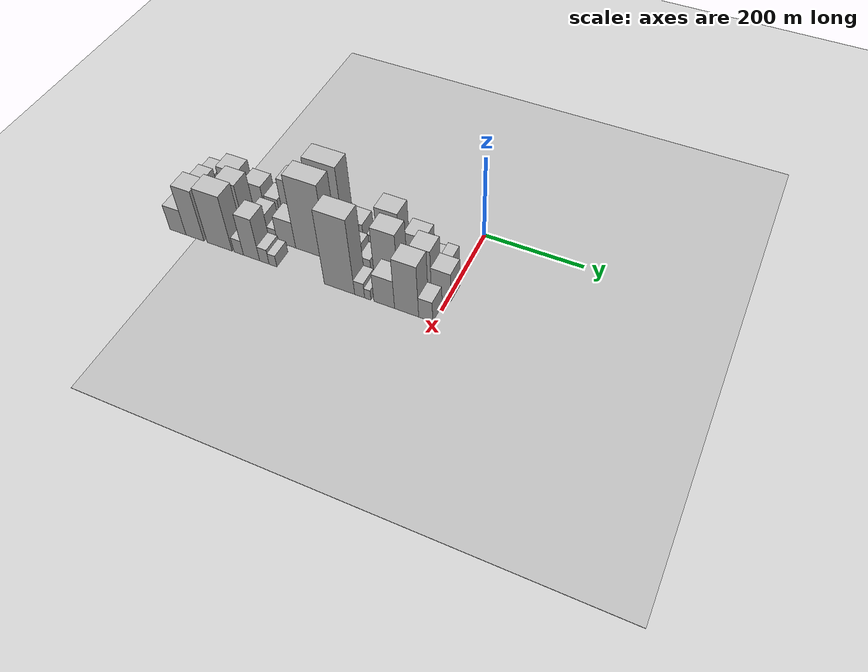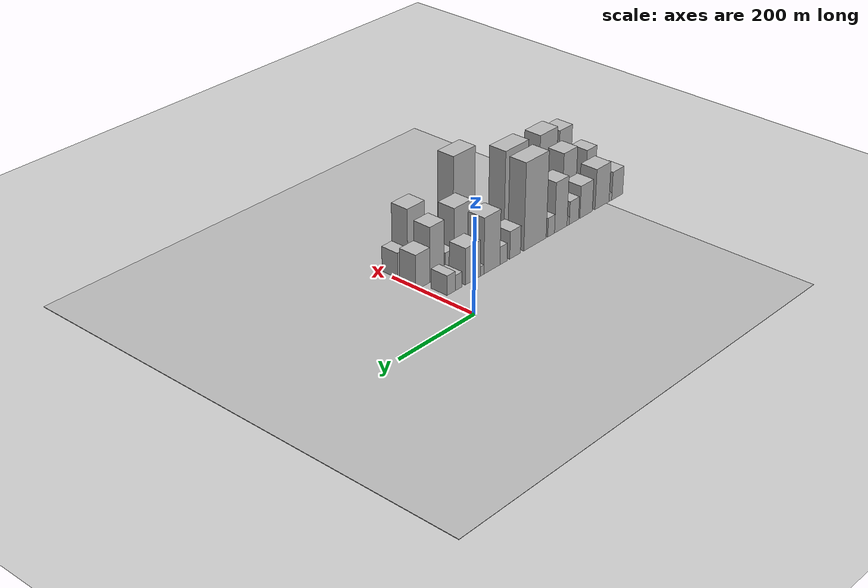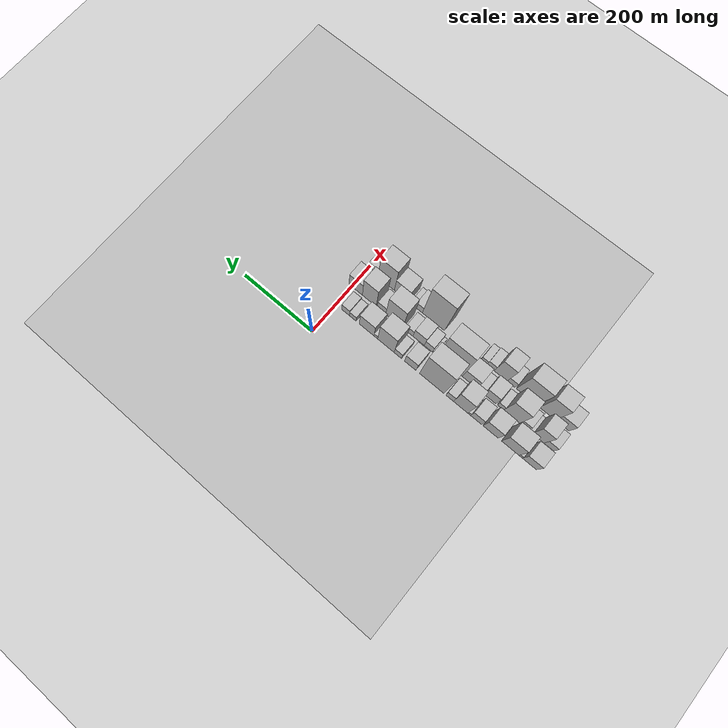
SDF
<sdf version="1.6">
 <world name="default">
  <include><name>ground_plane_1</name><uri>model://HANNAS_ground_plane</uri></include>
  <include>
   <name>ground_plane_2</name>
   <uri>model://HANNAS_ground_plane</uri>
   <pose>100 0 0  0 0 0</pose>
  </include>
  <model name="building_1">
   <static>1</static>
   <pose>100.0000 -536.4978 0 0.000000 0.000000 0.000000</pose>
   <link name="link">
    <pose>0 0 31.50 0 0 0</pose>
    <collision name="collision"><geometry><box><size>40.0000 37.0043 63.0000</size></box></geometry></collision>
    <visual name="visual">
     <cast_shadows>0</cast_shadows>
     <geometry><box><size>40.0000 37.0043 63.0000</size></box></geometry>
     <material>
      <script>
       <uri>model://HANNAS_wall/materials/scripts</uri>
       <uri>model://HANNAS_wall/materials/textures</uri>
       <name>vrc/HANNAS_wall</name>
      </script>
     </material>
    </visual>
   </link>
  </model>
  <model name="building_2">
   <static>1</static>
   <pose>100.0000 -513.5235 0 0.000000 0.000000 0.000000</pose>
   <link name="link">
    <pose>0 0 9.00 0 0 0</pose>
    <collision name="collision"><geometry><box><size>40.0000 8.9444 18.0000</size></box></geometry></collision>
    <visual name="visual">
     <cast_shadows>0</cast_shadows>
     <geometry><box><size>40.0000 8.9444 18.0000</size></box></geometry>
     <material>
      <script>
       <uri>model://HANNAS_wall/materials/scripts</uri>
       <uri>model://HANNAS_wall/materials/textures</uri>
       <name>vrc/HANNAS_wall</name>
      </script>
     </material>
    </visual>
   </link>
  </model>
  <model name="building_3">
   <static>1</static>
   <pose>100.0000 -485.9807 0 0.000000 0.000000 0.000000</pose>
   <link name="link">
    <pose>0 0 45.00 0 0 0</pose>
    <collision name="collision"><geometry><box><size>40.0000 46.1410 90.0000</size></box></geometry></collision>
    <visual name="visual">
     <cast_shadows>0</cast_shadows>
     <geometry><box><size>40.0000 46.1410 90.0000</size></box></geometry>
     <material>
      <script>
       <uri>model://HANNAS_wall/materials/scripts</uri>
       <uri>model://HANNAS_wall/materials/textures</uri>
       <name>vrc/HANNAS_wall</name>
      </script>
     </material>
    </visual>
   </link>
  </model>
  <model name="building_4">
   <static>1</static>
   <pose>100.0000 -433.6852 0 0.000000 0.000000 0.000000</pose>
   <link name="link">
    <pose>0 0 36.00 0 0 0</pose>
    <collision name="collision"><geometry><box><size>40.0000 40.4501 72.0000</size></box></geometry></collision>
    <visual name="visual">
     <cast_shadows>0</cast_shadows>
     <geometry><box><size>40.0000 40.4501 72.0000</size></box></geometry>
     <material>
      <script>
       <uri>model://HANNAS_wall/materials/scripts</uri>
       <uri>model://HANNAS_wall/materials/textures</uri>
       <name>vrc/HANNAS_wall</name>
      </script>
     </material>
    </visual>
   </link>
  </model>
  <model name="building_5">
   <static>1</static>
   <pose>100.0000 -394.5780 0 0.000000 0.000000 0.000000</pose>
   <link name="link">
    <pose>0 0 25.50 0 0 0</pose>
    <collision name="collision"><geometry><box><size>40.0000 29.7641 51.0000</size></box></geometry></collision>
    <visual name="visual">
     <cast_shadows>0</cast_shadows>
     <geometry><box><size>40.0000 29.7641 51.0000</size></box></geometry>
     <material>
      <script>
       <uri>model://HANNAS_wall/materials/scripts</uri>
       <uri>model://HANNAS_wall/materials/textures</uri>
       <name>vrc/HANNAS_wall</name>
      </script>
     </material>
    </visual>
   </link>
  </model>
  <model name="building_6">
   <static>1</static>
   <pose>100.0000 -375.9999 0 0.000000 0.000000 0.000000</pose>
   <link name="link">
    <pose>0 0 9.00 0 0 0</pose>
    <collision name="collision"><geometry><box><size>40.0000 7.3922 18.0000</size></box></geometry></collision>
    <visual name="visual">
     <cast_shadows>0</cast_shadows>
     <geometry><box><size>40.0000 7.3922 18.0000</size></box></geometry>
     <material>
      <script>
       <uri>model://HANNAS_wall/materials/scripts</uri>
       <uri>model://HANNAS_wall/materials/textures</uri>
       <name>vrc/HANNAS_wall</name>
      </script>
     </material>
    </visual>
   </link>
  </model>
  <model name="building_7">
   <static>1</static>
   <pose>100.0000 -352.7572 0 0.000000 0.000000 0.000000</pose>
   <link name="link">
    <pose>0 0 55.50 0 0 0</pose>
    <collision name="collision"><geometry><box><size>40.0000 39.0932 111.0000</size></box></geometry></collision>
    <visual name="visual">
     <cast_shadows>0</cast_shadows>
     <geometry><box><size>40.0000 39.0932 111.0000</size></box></geometry>
     <material>
      <script>
       <uri>model://HANNAS_wall/materials/scripts</uri>
       <uri>model://HANNAS_wall/materials/textures</uri>
       <name>vrc/HANNAS_wall</name>
      </script>
     </material>
    </visual>
   </link>
  </model>
  <model name="building_8">
   <static>1</static>
   <pose>100.0000 -322.6855 0 0.000000 0.000000 0.000000</pose>
   <link name="link">
    <pose>0 0 21.00 0 0 0</pose>
    <collision name="collision"><geometry><box><size>40.0000 21.0502 42.0000</size></box></geometry></collision>
    <visual name="visual">
     <cast_shadows>0</cast_shadows>
     <geometry><box><size>40.0000 21.0502 42.0000</size></box></geometry>
     <material>
      <script>
       <uri>model://HANNAS_wall/materials/scripts</uri>
       <uri>model://HANNAS_wall/materials/textures</uri>
       <name>vrc/HANNAS_wall</name>
      </script>
     </material>
    </visual>
   </link>
  </model>
  <model name="building_9">
   <static>1</static>
   <pose>100.0000 -273.0492 0 0.000000 0.000000 0.000000</pose>
   <link name="link">
    <pose>0 0 94.50 0 0 0</pose>
    <collision name="collision"><geometry><box><size>40.0000 68.2222 189.0000</size></box></geometry></collision>
    <visual name="visual">
     <cast_shadows>0</cast_shadows>
     <geometry><box><size>40.0000 68.2222 189.0000</size></box></geometry>
     <material>
      <script>
       <uri>model://HANNAS_wall/materials/scripts</uri>
       <uri>model://HANNAS_wall/materials/textures</uri>
       <name>vrc/HANNAS_wall</name>
      </script>
     </material>
    </visual>
   </link>
  </model>
  <model name="building_10">
   <static>1</static>
   <pose>100.0000 -212.8219 0 0.000000 0.000000 0.000000</pose>
   <link name="link">
    <pose>0 0 30.00 0 0 0</pose>
    <collision name="collision"><geometry><box><size>40.0000 32.2324 60.0000</size></box></geometry></collision>
    <visual name="visual">
     <cast_shadows>0</cast_shadows>
     <geometry><box><size>40.0000 32.2324 60.0000</size></box></geometry>
     <material>
      <script>
       <uri>model://HANNAS_wall/materials/scripts</uri>
       <uri>model://HANNAS_wall/materials/textures</uri>
       <name>vrc/HANNAS_wall</name>
      </script>
     </material>
    </visual>
   </link>
  </model>
  <model name="building_11">
   <static>1</static>
   <pose>100.0000 -178.1105 0 0.000000 0.000000 0.000000</pose>
   <link name="link">
    <pose>0 0 19.50 0 0 0</pose>
    <collision name="collision"><geometry><box><size>40.0000 21.1903 39.0000</size></box></geometry></collision>
    <visual name="visual">
     <cast_shadows>0</cast_shadows>
     <geometry><box><size>40.0000 21.1903 39.0000</size></box></geometry>
     <material>
      <script>
       <uri>model://HANNAS_wall/materials/scripts</uri>
       <uri>model://HANNAS_wall/materials/textures</uri>
       <name>vrc/HANNAS_wall</name>
      </script>
     </material>
    </visual>
   </link>
  </model>
  <model name="building_12">
   <static>1</static>
   <pose>100.0000 -144.1233 0 0.000000 0.000000 0.000000</pose>
   <link name="link">
    <pose>0 0 60.00 0 0 0</pose>
    <collision name="collision"><geometry><box><size>40.0000 46.7842 120.0000</size></box></geometry></collision>
    <visual name="visual">
     <cast_shadows>0</cast_shadows>
     <geometry><box><size>40.0000 46.7842 120.0000</size></box></geometry>
     <material>
      <script>
       <uri>model://HANNAS_wall/materials/scripts</uri>
       <uri>model://HANNAS_wall/materials/textures</uri>
       <name>vrc/HANNAS_wall</name>
      </script>
     </material>
    </visual>
   </link>
  </model>
  <model name="building_13">
   <static>1</static>
   <pose>100.0000 -115.5351 0 0.000000 0.000000 0.000000</pose>
   <link name="link">
    <pose>0 0 10.50 0 0 0</pose>
    <collision name="collision"><geometry><box><size>40.0000 10.3920 21.0000</size></box></geometry></collision>
    <visual name="visual">
     <cast_shadows>0</cast_shadows>
     <geometry><box><size>40.0000 10.3920 21.0000</size></box></geometry>
     <material>
      <script>
       <uri>model://HANNAS_wall/materials/scripts</uri>
       <uri>model://HANNAS_wall/materials/textures</uri>
       <name>vrc/HANNAS_wall</name>
      </script>
     </material>
    </visual>
   </link>
  </model>
  <model name="building_14">
   <static>1</static>
   <pose>100.0000 -89.1203 0 0.000000 0.000000 0.000000</pose>
   <link name="link">
    <pose>0 0 39.00 0 0 0</pose>
    <collision name="collision"><geometry><box><size>40.0000 42.4377 78.0000</size></box></geometry></collision>
    <visual name="visual">
     <cast_shadows>0</cast_shadows>
     <geometry><box><size>40.0000 42.4377 78.0000</size></box></geometry>
     <material>
      <script>
       <uri>model://HANNAS_wall/materials/scripts</uri>
       <uri>model://HANNAS_wall/materials/textures</uri>
       <name>vrc/HANNAS_wall</name>
      </script>
     </material>
    </visual>
   </link>
  </model>
  <model name="building_15">
   <static>1</static>
   <pose>100.0000 -49.3917 0 0.000000 0.000000 0.000000</pose>
   <link name="link">
    <pose>0 0 16.50 0 0 0</pose>
    <collision name="collision"><geometry><box><size>40.0000 19.0196 33.0000</size></box></geometry></collision>
    <visual name="visual">
     <cast_shadows>0</cast_shadows>
     <geometry><box><size>40.0000 19.0196 33.0000</size></box></geometry>
     <material>
      <script>
       <uri>model://HANNAS_wall/materials/scripts</uri>
       <uri>model://HANNAS_wall/materials/textures</uri>
       <name>vrc/HANNAS_wall</name>
      </script>
     </material>
    </visual>
   </link>
  </model>
  <model name="building_16">
   <static>1</static>
   <pose>100.0000 -28.5650 0 0.000000 0.000000 0.000000</pose>
   <link name="link">
    <pose>0 0 21.00 0 0 0</pose>
    <collision name="collision"><geometry><box><size>40.0000 22.6339 42.0000</size></box></geometry></collision>
    <visual name="visual">
     <cast_shadows>0</cast_shadows>
     <geometry><box><size>40.0000 22.6339 42.0000</size></box></geometry>
     <material>
      <script>
       <uri>model://HANNAS_wall/materials/scripts</uri>
       <uri>model://HANNAS_wall/materials/textures</uri>
       <name>vrc/HANNAS_wall</name>
      </script>
     </material>
    </visual>
   </link>
  </model>
  <model name="building_31">
   <static>1</static>
   <pose>155.0000 -547.2666 0 0.000000 0.000000 0.000000</pose>
   <link name="link">
    <pose>0 0 22.50 0 0 0</pose>
    <collision name="collision"><geometry><box><size>40.0000 25.4667 45.0000</size></box></geometry></collision>
    <visual name="visual">
     <cast_shadows>0</cast_shadows>
     <geometry><box><size>40.0000 25.4667 45.0000</size></box></geometry>
     <material>
      <script>
       <uri>model://HANNAS_wall/materials/scripts</uri>
       <uri>model://HANNAS_wall/materials/textures</uri>
       <name>vrc/HANNAS_wall</name>
      </script>
     </material>
    </visual>
   </link>
  </model>
  <model name="building_32">
   <static>1</static>
   <pose>155.0000 -518.5581 0 0.000000 0.000000 0.000000</pose>
   <link name="link">
    <pose>0 0 49.50 0 0 0</pose>
    <collision name="collision"><geometry><box><size>40.0000 31.9503 99.0000</size></box></geometry></collision>
    <visual name="visual">
     <cast_shadows>0</cast_shadows>
     <geometry><box><size>40.0000 31.9503 99.0000</size></box></geometry>
     <material>
      <script>
       <uri>model://HANNAS_wall/materials/scripts</uri>
       <uri>model://HANNAS_wall/materials/textures</uri>
       <name>vrc/HANNAS_wall</name>
      </script>
     </material>
    </visual>
   </link>
  </model>
  <model name="building_33">
   <static>1</static>
   <pose>155.0000 -497.5634 0 0.000000 0.000000 0.000000</pose>
   <link name="link">
    <pose>0 0 12.00 0 0 0</pose>
    <collision name="collision"><geometry><box><size>40.0000 10.0391 24.0000</size></box></geometry></collision>
    <visual name="visual">
     <cast_shadows>0</cast_shadows>
     <geometry><box><size>40.0000 10.0391 24.0000</size></box></geometry>
     <material>
      <script>
       <uri>model://HANNAS_wall/materials/scripts</uri>
       <uri>model://HANNAS_wall/materials/textures</uri>
       <name>vrc/HANNAS_wall</name>
      </script>
     </material>
    </visual>
   </link>
  </model>
  <model name="building_34">
   <static>1</static>
   <pose>155.0000 -481.2529 0 0.000000 0.000000 0.000000</pose>
   <link name="link">
    <pose>0 0 21.00 0 0 0</pose>
    <collision name="collision"><geometry><box><size>40.0000 22.5821 42.0000</size></box></geometry></collision>
    <visual name="visual">
     <cast_shadows>0</cast_shadows>
     <geometry><box><size>40.0000 22.5821 42.0000</size></box></geometry>
     <material>
      <script>
       <uri>model://HANNAS_wall/materials/scripts</uri>
       <uri>model://HANNAS_wall/materials/textures</uri>
       <name>vrc/HANNAS_wall</name>
      </script>
     </material>
    </visual>
   </link>
  </model>
  <model name="building_35">
   <static>1</static>
   <pose>155.0000 -448.2591 0 0.000000 0.000000 0.000000</pose>
   <link name="link">
    <pose>0 0 60.00 0 0 0</pose>
    <collision name="collision"><geometry><box><size>40.0000 43.4055 120.0000</size></box></geometry></collision>
    <visual name="visual">
     <cast_shadows>0</cast_shadows>
     <geometry><box><size>40.0000 43.4055 120.0000</size></box></geometry>
     <material>
      <script>
       <uri>model://HANNAS_wall/materials/scripts</uri>
       <uri>model://HANNAS_wall/materials/textures</uri>
       <name>vrc/HANNAS_wall</name>
      </script>
     </material>
    </visual>
   </link>
  </model>
  <model name="building_36">
   <static>1</static>
   <pose>155.0000 -418.0772 0 0.000000 0.000000 0.000000</pose>
   <link name="link">
    <pose>0 0 16.50 0 0 0</pose>
    <collision name="collision"><geometry><box><size>40.0000 16.9582 33.0000</size></box></geometry></collision>
    <visual name="visual">
     <cast_shadows>0</cast_shadows>
     <geometry><box><size>40.0000 16.9582 33.0000</size></box></geometry>
     <material>
      <script>
       <uri>model://HANNAS_wall/materials/scripts</uri>
       <uri>model://HANNAS_wall/materials/textures</uri>
       <name>vrc/HANNAS_wall</name>
      </script>
     </material>
    </visual>
   </link>
  </model>
  <model name="building_37">
   <static>1</static>
   <pose>155.0000 -389.3531 0 0.000000 0.000000 0.000000</pose>
   <link name="link">
    <pose>0 0 31.50 0 0 0</pose>
    <collision name="collision"><geometry><box><size>40.0000 32.4898 63.0000</size></box></geometry></collision>
    <visual name="visual">
     <cast_shadows>0</cast_shadows>
     <geometry><box><size>40.0000 32.4898 63.0000</size></box></geometry>
     <material>
      <script>
       <uri>model://HANNAS_wall/materials/scripts</uri>
       <uri>model://HANNAS_wall/materials/textures</uri>
       <name>vrc/HANNAS_wall</name>
      </script>
     </material>
    </visual>
   </link>
  </model>
  <model name="building_38">
   <static>1</static>
   <pose>155.0000 -363.6182 0 0.000000 0.000000 0.000000</pose>
   <link name="link">
    <pose>0 0 16.50 0 0 0</pose>
    <collision name="collision"><geometry><box><size>40.0000 18.9801 33.0000</size></box></geometry></collision>
    <visual name="visual">
     <cast_shadows>0</cast_shadows>
     <geometry><box><size>40.0000 18.9801 33.0000</size></box></geometry>
     <material>
      <script>
       <uri>model://HANNAS_wall/materials/scripts</uri>
       <uri>model://HANNAS_wall/materials/textures</uri>
       <name>vrc/HANNAS_wall</name>
      </script>
     </material>
    </visual>
   </link>
  </model>
  <model name="building_39">
   <static>1</static>
   <pose>155.0000 -333.9596 0 0.000000 0.000000 0.000000</pose>
   <link name="link">
    <pose>0 0 34.50 0 0 0</pose>
    <collision name="collision"><geometry><box><size>40.0000 40.3371 69.0000</size></box></geometry></collision>
    <visual name="visual">
     <cast_shadows>0</cast_shadows>
     <geometry><box><size>40.0000 40.3371 69.0000</size></box></geometry>
     <material>
      <script>
       <uri>model://HANNAS_wall/materials/scripts</uri>
       <uri>model://HANNAS_wall/materials/textures</uri>
       <name>vrc/HANNAS_wall</name>
      </script>
     </material>
    </visual>
   </link>
  </model>
  <model name="building_40">
   <static>1</static>
   <pose>155.0000 -279.4858 0 0.000000 0.000000 0.000000</pose>
   <link name="link">
    <pose>0 0 96.00 0 0 0</pose>
    <collision name="collision"><geometry><box><size>40.0000 68.6106 192.0000</size></box></geometry></collision>
    <visual name="visual">
     <cast_shadows>0</cast_shadows>
     <geometry><box><size>40.0000 68.6106 192.0000</size></box></geometry>
     <material>
      <script>
       <uri>model://HANNAS_wall/materials/scripts</uri>
       <uri>model://HANNAS_wall/materials/textures</uri>
       <name>vrc/HANNAS_wall</name>
      </script>
     </material>
    </visual>
   </link>
  </model>
  <model name="building_41">
   <static>1</static>
   <pose>155.0000 -235.2653 0 0.000000 0.000000 0.000000</pose>
   <link name="link">
    <pose>0 0 9.00 0 0 0</pose>
    <collision name="collision"><geometry><box><size>40.0000 7.8304 18.0000</size></box></geometry></collision>
    <visual name="visual">
     <cast_shadows>0</cast_shadows>
     <geometry><box><size>40.0000 7.8304 18.0000</size></box></geometry>
     <material>
      <script>
       <uri>model://HANNAS_wall/materials/scripts</uri>
       <uri>model://HANNAS_wall/materials/textures</uri>
       <name>vrc/HANNAS_wall</name>
      </script>
     </material>
    </visual>
   </link>
  </model>
  <model name="building_42">
   <static>1</static>
   <pose>155.0000 -219.8077 0 0.000000 0.000000 0.000000</pose>
   <link name="link">
    <pose>0 0 21.00 0 0 0</pose>
    <collision name="collision"><geometry><box><size>40.0000 23.0848 42.0000</size></box></geometry></collision>
    <visual name="visual">
     <cast_shadows>0</cast_shadows>
     <geometry><box><size>40.0000 23.0848 42.0000</size></box></geometry>
     <material>
      <script>
       <uri>model://HANNAS_wall/materials/scripts</uri>
       <uri>model://HANNAS_wall/materials/textures</uri>
       <name>vrc/HANNAS_wall</name>
      </script>
     </material>
    </visual>
   </link>
  </model>
  <model name="building_43">
   <static>1</static>
   <pose>155.0000 -192.2204 0 0.000000 0.000000 0.000000</pose>
   <link name="link">
    <pose>0 0 30.00 0 0 0</pose>
    <collision name="collision"><geometry><box><size>40.0000 32.0897 60.0000</size></box></geometry></collision>
    <visual name="visual">
     <cast_shadows>0</cast_shadows>
     <geometry><box><size>40.0000 32.0897 60.0000</size></box></geometry>
     <material>
      <script>
       <uri>model://HANNAS_wall/materials/scripts</uri>
       <uri>model://HANNAS_wall/materials/textures</uri>
       <name>vrc/HANNAS_wall</name>
      </script>
     </material>
    </visual>
   </link>
  </model>
  <model name="building_44">
   <static>1</static>
   <pose>155.0000 -164.7455 0 0.000000 0.000000 0.000000</pose>
   <link name="link">
    <pose>0 0 19.50 0 0 0</pose>
    <collision name="collision"><geometry><box><size>40.0000 22.8601 39.0000</size></box></geometry></collision>
    <visual name="visual">
     <cast_shadows>0</cast_shadows>
     <geometry><box><size>40.0000 22.8601 39.0000</size></box></geometry>
     <material>
      <script>
       <uri>model://HANNAS_wall/materials/scripts</uri>
       <uri>model://HANNAS_wall/materials/textures</uri>
       <name>vrc/HANNAS_wall</name>
      </script>
     </material>
    </visual>
   </link>
  </model>
  <model name="building_45">
   <static>1</static>
   <pose>155.0000 -122.9405 0 0.000000 0.000000 0.000000</pose>
   <link name="link">
    <pose>0 0 64.50 0 0 0</pose>
    <collision name="collision"><geometry><box><size>40.0000 48.7498 129.0000</size></box></geometry></collision>
    <visual name="visual">
     <cast_shadows>0</cast_shadows>
     <geometry><box><size>40.0000 48.7498 129.0000</size></box></geometry>
     <material>
      <script>
       <uri>model://HANNAS_wall/materials/scripts</uri>
       <uri>model://HANNAS_wall/materials/textures</uri>
       <name>vrc/HANNAS_wall</name>
      </script>
     </material>
    </visual>
   </link>
  </model>
  <model name="building_46">
   <static>1</static>
   <pose>155.0000 -86.2592 0 0.000000 0.000000 0.000000</pose>
   <link name="link">
    <pose>0 0 22.50 0 0 0</pose>
    <collision name="collision"><geometry><box><size>40.0000 24.6128 45.0000</size></box></geometry></collision>
    <visual name="visual">
     <cast_shadows>0</cast_shadows>
     <geometry><box><size>40.0000 24.6128 45.0000</size></box></geometry>
     <material>
      <script>
       <uri>model://HANNAS_wall/materials/scripts</uri>
       <uri>model://HANNAS_wall/materials/textures</uri>
       <name>vrc/HANNAS_wall</name>
      </script>
     </material>
    </visual>
   </link>
  </model>
  <model name="building_47">
   <static>1</static>
   <pose>155.0000 -50.9392 0 0.000000 0.000000 0.000000</pose>
   <link name="link">
    <pose>0 0 58.50 0 0 0</pose>
    <collision name="collision"><geometry><box><size>40.0000 40.0271 117.0000</size></box></geometry></collision>
    <visual name="visual">
     <cast_shadows>0</cast_shadows>
     <geometry><box><size>40.0000 40.0271 117.0000</size></box></geometry>
     <material>
      <script>
       <uri>model://HANNAS_wall/materials/scripts</uri>
       <uri>model://HANNAS_wall/materials/textures</uri>
       <name>vrc/HANNAS_wall</name>
      </script>
     </material>
    </visual>
   </link>
  </model>
  <model name="building_48">
   <static>1</static>
   <pose>155.0000 -11.4547 0 0.000000 0.000000 0.000000</pose>
   <link name="link">
    <pose>0 0 37.50 0 0 0</pose>
    <collision name="collision"><geometry><box><size>40.0000 38.9421 75.0000</size></box></geometry></collision>
    <visual name="visual">
     <cast_shadows>0</cast_shadows>
     <geometry><box><size>40.0000 38.9421 75.0000</size></box></geometry>
     <material>
      <script>
       <uri>model://HANNAS_wall/materials/scripts</uri>
       <uri>model://HANNAS_wall/materials/textures</uri>
       <name>vrc/HANNAS_wall</name>
      </script>
     </material>
    </visual>
   </link>
  </model>
  <model name="building_66">
   <static>1</static>
   <pose>210.0000 -541.5973 0 0.000000 0.000000 0.000000</pose>
   <link name="link">
    <pose>0 0 33.00 0 0 0</pose>
    <collision name="collision"><geometry><box><size>40.0000 36.8053 66.0000</size></box></geometry></collision>
    <visual name="visual">
     <cast_shadows>0</cast_shadows>
     <geometry><box><size>40.0000 36.8053 66.0000</size></box></geometry>
     <material>
      <script>
       <uri>model://HANNAS_wall/materials/scripts</uri>
       <uri>model://HANNAS_wall/materials/textures</uri>
       <name>vrc/HANNAS_wall</name>
      </script>
     </material>
    </visual>
   </link>
  </model>
  <model name="building_67">
   <static>1</static>
   <pose>210.0000 -502.7624 0 0.000000 0.000000 0.000000</pose>
   <link name="link">
    <pose>0 0 66.00 0 0 0</pose>
    <collision name="collision"><geometry><box><size>40.0000 40.8647 132.0000</size></box></geometry></collision>
    <visual name="visual">
     <cast_shadows>0</cast_shadows>
     <geometry><box><size>40.0000 40.8647 132.0000</size></box></geometry>
     <material>
      <script>
       <uri>model://HANNAS_wall/materials/scripts</uri>
       <uri>model://HANNAS_wall/materials/textures</uri>
       <name>vrc/HANNAS_wall</name>
      </script>
     </material>
    </visual>
   </link>
  </model>
  <model name="building_68">
   <static>1</static>
   <pose>210.0000 -447.4744 0 0.000000 0.000000 0.000000</pose>
   <link name="link">
    <pose>0 0 72.00 0 0 0</pose>
    <collision name="collision"><geometry><box><size>40.0000 55.7113 144.0000</size></box></geometry></collision>
    <visual name="visual">
     <cast_shadows>0</cast_shadows>
     <geometry><box><size>40.0000 55.7113 144.0000</size></box></geometry>
     <material>
      <script>
       <uri>model://HANNAS_wall/materials/scripts</uri>
       <uri>model://HANNAS_wall/materials/textures</uri>
       <name>vrc/HANNAS_wall</name>
      </script>
     </material>
    </visual>
   </link>
  </model>
  <model name="building_69">
   <static>1</static>
   <pose>210.0000 -405.1567 0 0.000000 0.000000 0.000000</pose>
   <link name="link">
    <pose>0 0 19.50 0 0 0</pose>
    <collision name="collision"><geometry><box><size>40.0000 20.9241 39.0000</size></box></geometry></collision>
    <visual name="visual">
     <cast_shadows>0</cast_shadows>
     <geometry><box><size>40.0000 20.9241 39.0000</size></box></geometry>
     <material>
      <script>
       <uri>model://HANNAS_wall/materials/scripts</uri>
       <uri>model://HANNAS_wall/materials/textures</uri>
       <name>vrc/HANNAS_wall</name>
      </script>
     </material>
    </visual>
   </link>
  </model>
  <model name="building_70">
   <static>1</static>
   <pose>210.0000 -377.0378 0 0.000000 0.000000 0.000000</pose>
   <link name="link">
    <pose>0 0 55.50 0 0 0</pose>
    <collision name="collision"><geometry><box><size>40.0000 35.3137 111.0000</size></box></geometry></collision>
    <visual name="visual">
     <cast_shadows>0</cast_shadows>
     <geometry><box><size>40.0000 35.3137 111.0000</size></box></geometry>
     <material>
      <script>
       <uri>model://HANNAS_wall/materials/scripts</uri>
       <uri>model://HANNAS_wall/materials/textures</uri>
       <name>vrc/HANNAS_wall</name>
      </script>
     </material>
    </visual>
   </link>
  </model>
  <model name="building_71">
   <static>1</static>
   <pose>210.0000 -349.1001 0 0.000000 0.000000 0.000000</pose>
   <link name="link">
    <pose>0 0 19.50 0 0 0</pose>
    <collision name="collision"><geometry><box><size>40.0000 20.5616 39.0000</size></box></geometry></collision>
    <visual name="visual">
     <cast_shadows>0</cast_shadows>
     <geometry><box><size>40.0000 20.5616 39.0000</size></box></geometry>
     <material>
      <script>
       <uri>model://HANNAS_wall/materials/scripts</uri>
       <uri>model://HANNAS_wall/materials/textures</uri>
       <name>vrc/HANNAS_wall</name>
      </script>
     </material>
    </visual>
   </link>
  </model>
  <model name="building_72">
   <static>1</static>
   <pose>210.0000 -330.4810 0 0.000000 0.000000 0.000000</pose>
   <link name="link">
    <pose>0 0 15.00 0 0 0</pose>
    <collision name="collision"><geometry><box><size>40.0000 16.6767 30.0000</size></box></geometry></collision>
    <visual name="visual">
     <cast_shadows>0</cast_shadows>
     <geometry><box><size>40.0000 16.6767 30.0000</size></box></geometry>
     <material>
      <script>
       <uri>model://HANNAS_wall/materials/scripts</uri>
       <uri>model://HANNAS_wall/materials/textures</uri>
       <name>vrc/HANNAS_wall</name>
      </script>
     </material>
    </visual>
   </link>
  </model>
  <model name="building_73">
   <static>1</static>
   <pose>210.0000 -190.0731 0 0.000000 0.000000 0.000000</pose>
   <link name="link">
    <pose>0 0 97.50 0 0 0</pose>
    <collision name="collision"><geometry><box><size>40.0000 62.7130 195.0000</size></box></geometry></collision>
    <visual name="visual">
     <cast_shadows>0</cast_shadows>
     <geometry><box><size>40.0000 62.7130 195.0000</size></box></geometry>
     <material>
      <script>
       <uri>model://HANNAS_wall/materials/scripts</uri>
       <uri>model://HANNAS_wall/materials/textures</uri>
       <name>vrc/HANNAS_wall</name>
      </script>
     </material>
    </visual>
   </link>
  </model>
  <model name="building_74">
   <static>1</static>
   <pose>210.0000 -148.5281 0 0.000000 0.000000 0.000000</pose>
   <link name="link">
    <pose>0 0 19.50 0 0 0</pose>
    <collision name="collision"><geometry><box><size>40.0000 20.3769 39.0000</size></box></geometry></collision>
    <visual name="visual">
     <cast_shadows>0</cast_shadows>
     <geometry><box><size>40.0000 20.3769 39.0000</size></box></geometry>
     <material>
      <script>
       <uri>model://HANNAS_wall/materials/scripts</uri>
       <uri>model://HANNAS_wall/materials/textures</uri>
       <name>vrc/HANNAS_wall</name>
      </script>
     </material>
    </visual>
   </link>
  </model>
  <model name="building_75">
   <static>1</static>
   <pose>210.0000 -131.9773 0 0.000000 0.000000 0.000000</pose>
   <link name="link">
    <pose>0 0 13.50 0 0 0</pose>
    <collision name="collision"><geometry><box><size>40.0000 12.7246 27.0000</size></box></geometry></collision>
    <visual name="visual">
     <cast_shadows>0</cast_shadows>
     <geometry><box><size>40.0000 12.7246 27.0000</size></box></geometry>
     <material>
      <script>
       <uri>model://HANNAS_wall/materials/scripts</uri>
       <uri>model://HANNAS_wall/materials/textures</uri>
       <name>vrc/HANNAS_wall</name>
      </script>
     </material>
    </visual>
   </link>
  </model>
  <model name="building_76">
   <static>1</static>
   <pose>210.0000 -98.7739 0 0.000000 0.000000 0.000000</pose>
   <link name="link">
    <pose>0 0 37.50 0 0 0</pose>
    <collision name="collision"><geometry><box><size>40.0000 41.6821 75.0000</size></box></geometry></collision>
    <visual name="visual">
     <cast_shadows>0</cast_shadows>
     <geometry><box><size>40.0000 41.6821 75.0000</size></box></geometry>
     <material>
      <script>
       <uri>model://HANNAS_wall/materials/scripts</uri>
       <uri>model://HANNAS_wall/materials/textures</uri>
       <name>vrc/HANNAS_wall</name>
      </script>
     </material>
    </visual>
   </link>
  </model>
  <model name="building_77">
   <static>1</static>
   <pose>210.0000 -54.0865 0 0.000000 0.000000 0.000000</pose>
   <link name="link">
    <pose>0 0 67.50 0 0 0</pose>
    <collision name="collision"><geometry><box><size>40.0000 47.6928 135.0000</size></box></geometry></collision>
    <visual name="visual">
     <cast_shadows>0</cast_shadows>
     <geometry><box><size>40.0000 47.6928 135.0000</size></box></geometry>
     <material>
      <script>
       <uri>model://HANNAS_wall/materials/scripts</uri>
       <uri>model://HANNAS_wall/materials/textures</uri>
       <name>vrc/HANNAS_wall</name>
      </script>
     </material>
    </visual>
   </link>
  </model>
  <model name="building_78">
   <static>1</static>
   <pose>210.0000 -16.4077 0 0.000000 0.000000 0.000000</pose>
   <link name="link">
    <pose>0 0 27.00 0 0 0</pose>
    <collision name="collision"><geometry><box><size>40.0000 27.6648 54.0000</size></box></geometry></collision>
    <visual name="visual">
     <cast_shadows>0</cast_shadows>
     <geometry><box><size>40.0000 27.6648 54.0000</size></box></geometry>
     <material>
      <script>
       <uri>model://HANNAS_wall/materials/scripts</uri>
       <uri>model://HANNAS_wall/materials/textures</uri>
       <name>vrc/HANNAS_wall</name>
      </script>
     </material>
    </visual>
   </link>
  </model>
 </world>
</sdf>
